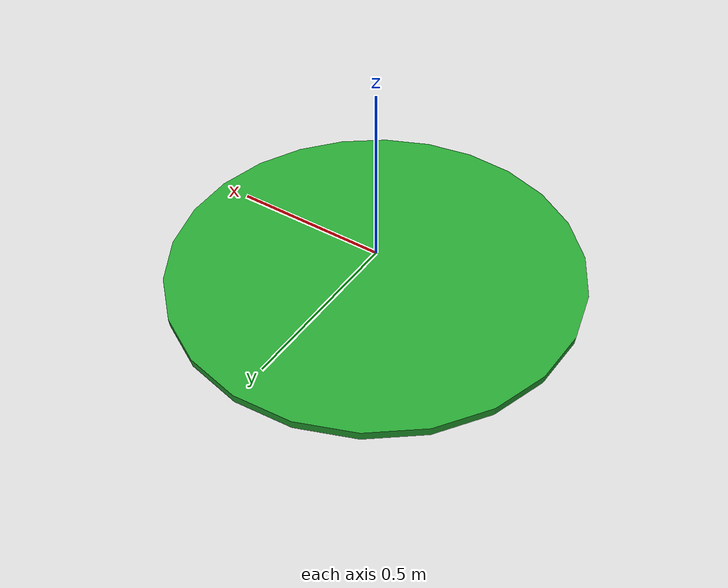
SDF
<?xml version='1.0'?>
<sdf version='1.6'>
  <model name='goal_location'>

    <link name='link_0'>
        <inertial>
          <mass>0.0001</mass>
          <inertia>
            <ixx>1e-05</ixx>
            <ixy>0</ixy>
            <ixz>0</ixz>
            <iyy>1e-05</iyy>
            <iyz>0</iyz>
            <izz>0</izz>
          </inertia>
        <pose frame=''>0 0 0 0 -0 0</pose>
      </inertial>
      <pose frame=''>2.4e-05 -1.2e-05 0 0 -0 0</pose>
      <gravity>0</gravity>
      <self_collide>0</self_collide>
      <kinematic>0</kinematic>
      <enable_wind>0</enable_wind>

      <visual name='visual'>
        <pose frame=''>0 0 0 0 -0 0</pose>
        <geometry>
          <cylinder>
            <radius>0.6</radius>
            <length>0.025</length>
          </cylinder>
        </geometry>
        <material>
          <lighting>1</lighting>
          <script>
            <uri>file://media/materials/scripts/gazebo.material</uri>
            <name>Gazebo/Green</name>
          </script>
          <shader type='vertex'>
            <normal_map>__default__</normal_map>
          </shader>
          <ambient>1 0 0 1</ambient>
          <diffuse>0.2 1 0.2 1</diffuse>
          <specular>0.1 0.1 0.1 1</specular>
          <emissive>0 0 0 1</emissive>
        </material>
        <transparency>0</transparency>
        <cast_shadows>1</cast_shadows>
      </visual>

    </link>

    <static>1</static>
    <allow_auto_disable>1</allow_auto_disable>

  </model>
</sdf>
